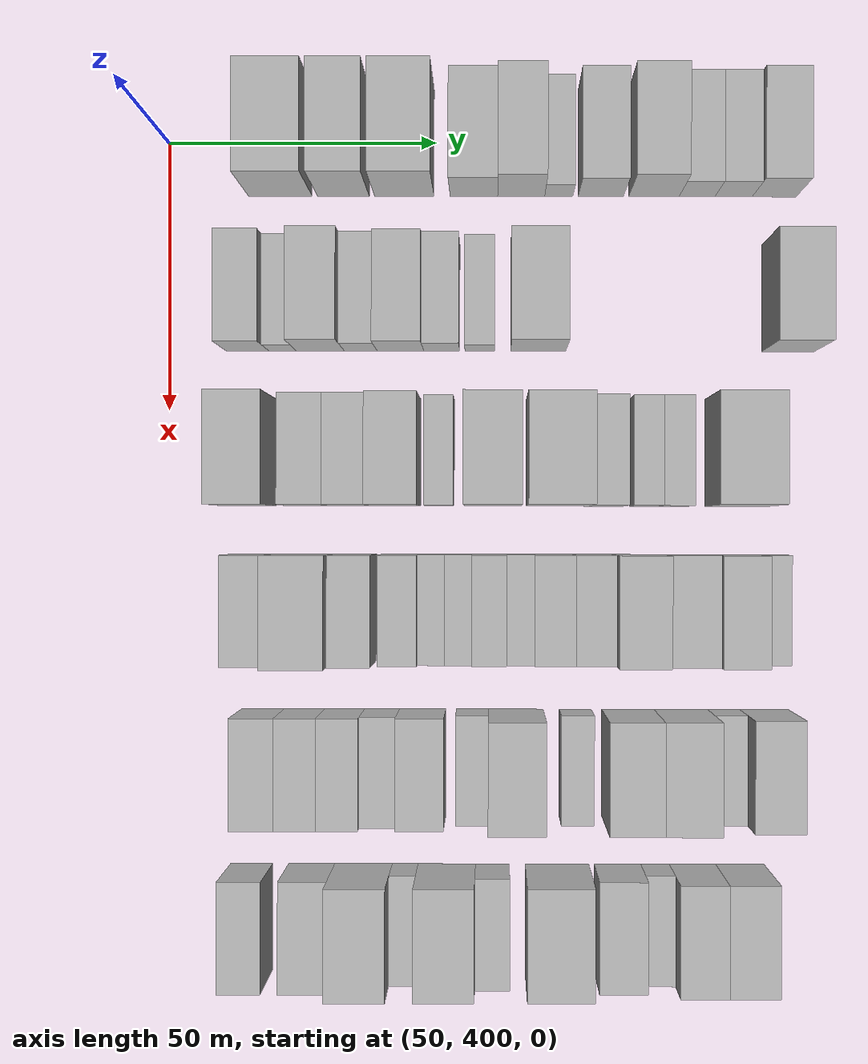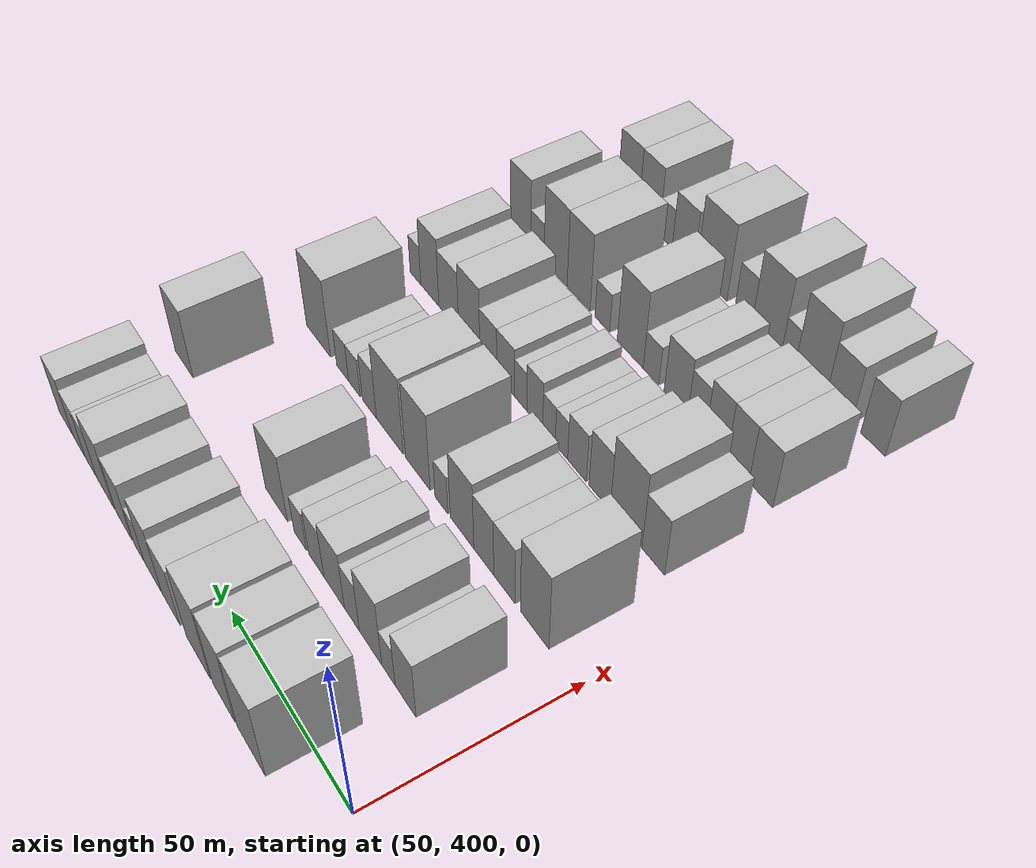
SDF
<sdf version="1.6">
 <world name="default">
  <model name="building_104">
   <static>1</static>
   <pose>50.0000 420.7180 0 0.000000 0.000000 0.000000</pose>
   <link name="link">
    <pose>0 0 12.00 0 0 0</pose>
    <collision name="collision"><geometry><box><size>20.0000 11.9246 24.0000</size></box></geometry></collision>
    <visual name="visual">
     <cast_shadows>0</cast_shadows>
     <geometry><box><size>20.0000 11.9246 24.0000</size></box></geometry>
     <material>
      <script>
       <uri>model://HANNAS_wall/materials/scripts</uri>
       <uri>model://HANNAS_wall/materials/textures</uri>
       <name>vrc/HANNAS_wall</name>
      </script>
     </material>
    </visual>
   </link>
  </model>
  <model name="building_105">
   <static>1</static>
   <pose>50.0000 432.5202 0 0.000000 0.000000 0.000000</pose>
   <link name="link">
    <pose>0 0 12.00 0 0 0</pose>
    <collision name="collision"><geometry><box><size>20.0000 9.6797 24.0000</size></box></geometry></collision>
    <visual name="visual">
     <cast_shadows>0</cast_shadows>
     <geometry><box><size>20.0000 9.6797 24.0000</size></box></geometry>
     <material>
      <script>
       <uri>model://HANNAS_wall/materials/scripts</uri>
       <uri>model://HANNAS_wall/materials/textures</uri>
       <name>vrc/HANNAS_wall</name>
      </script>
     </material>
    </visual>
   </link>
  </model>
  <model name="building_106">
   <static>1</static>
   <pose>50.0000 443.9248 0 0.000000 0.000000 0.000000</pose>
   <link name="link">
    <pose>0 0 12.00 0 0 0</pose>
    <collision name="collision"><geometry><box><size>20.0000 11.1296 24.0000</size></box></geometry></collision>
    <visual name="visual">
     <cast_shadows>0</cast_shadows>
     <geometry><box><size>20.0000 11.1296 24.0000</size></box></geometry>
     <material>
      <script>
       <uri>model://HANNAS_wall/materials/scripts</uri>
       <uri>model://HANNAS_wall/materials/textures</uri>
       <name>vrc/HANNAS_wall</name>
      </script>
     </material>
    </visual>
   </link>
  </model>
  <model name="building_107">
   <static>1</static>
   <pose>50.0000 456.9297 0 0.000000 0.000000 0.000000</pose>
   <link name="link">
    <pose>0 0 9.00 0 0 0</pose>
    <collision name="collision"><geometry><box><size>20.0000 8.8801 18.0000</size></box></geometry></collision>
    <visual name="visual">
     <cast_shadows>0</cast_shadows>
     <geometry><box><size>20.0000 8.8801 18.0000</size></box></geometry>
     <material>
      <script>
       <uri>model://HANNAS_wall/materials/scripts</uri>
       <uri>model://HANNAS_wall/materials/textures</uri>
       <name>vrc/HANNAS_wall</name>
      </script>
     </material>
    </visual>
   </link>
  </model>
  <model name="building_108">
   <static>1</static>
   <pose>50.0000 465.7700 0 0.000000 0.000000 0.000000</pose>
   <link name="link">
    <pose>0 0 10.50 0 0 0</pose>
    <collision name="collision"><geometry><box><size>20.0000 8.8006 21.0000</size></box></geometry></collision>
    <visual name="visual">
     <cast_shadows>0</cast_shadows>
     <geometry><box><size>20.0000 8.8006 21.0000</size></box></geometry>
     <material>
      <script>
       <uri>model://HANNAS_wall/materials/scripts</uri>
       <uri>model://HANNAS_wall/materials/textures</uri>
       <name>vrc/HANNAS_wall</name>
      </script>
     </material>
    </visual>
   </link>
  </model>
  <model name="building_109">
   <static>1</static>
   <pose>50.0000 472.8131 0 0.000000 0.000000 0.000000</pose>
   <link name="link">
    <pose>0 0 6.00 0 0 0</pose>
    <collision name="collision"><geometry><box><size>20.0000 5.2856 12.0000</size></box></geometry></collision>
    <visual name="visual">
     <cast_shadows>0</cast_shadows>
     <geometry><box><size>20.0000 5.2856 12.0000</size></box></geometry>
     <material>
      <script>
       <uri>model://HANNAS_wall/materials/scripts</uri>
       <uri>model://HANNAS_wall/materials/textures</uri>
       <name>vrc/HANNAS_wall</name>
      </script>
     </material>
    </visual>
   </link>
  </model>
  <model name="building_110">
   <static>1</static>
   <pose>50.0000 480.6800 0 0.000000 0.000000 0.000000</pose>
   <link name="link">
    <pose>0 0 9.00 0 0 0</pose>
    <collision name="collision"><geometry><box><size>20.0000 8.4480 18.0000</size></box></geometry></collision>
    <visual name="visual">
     <cast_shadows>0</cast_shadows>
     <geometry><box><size>20.0000 8.4480 18.0000</size></box></geometry>
     <material>
      <script>
       <uri>model://HANNAS_wall/materials/scripts</uri>
       <uri>model://HANNAS_wall/materials/textures</uri>
       <name>vrc/HANNAS_wall</name>
      </script>
     </material>
    </visual>
   </link>
  </model>
  <model name="building_111">
   <static>1</static>
   <pose>50.0000 490.6260 0 0.000000 0.000000 0.000000</pose>
   <link name="link">
    <pose>0 0 10.50 0 0 0</pose>
    <collision name="collision"><geometry><box><size>20.0000 9.4441 21.0000</size></box></geometry></collision>
    <visual name="visual">
     <cast_shadows>0</cast_shadows>
     <geometry><box><size>20.0000 9.4441 21.0000</size></box></geometry>
     <material>
      <script>
       <uri>model://HANNAS_wall/materials/scripts</uri>
       <uri>model://HANNAS_wall/materials/textures</uri>
       <name>vrc/HANNAS_wall</name>
      </script>
     </material>
    </visual>
   </link>
  </model>
  <model name="building_112">
   <static>1</static>
   <pose>50.0000 498.7035 0 0.000000 0.000000 0.000000</pose>
   <link name="link">
    <pose>0 0 7.50 0 0 0</pose>
    <collision name="collision"><geometry><box><size>20.0000 6.7109 15.0000</size></box></geometry></collision>
    <visual name="visual">
     <cast_shadows>0</cast_shadows>
     <geometry><box><size>20.0000 6.7109 15.0000</size></box></geometry>
     <material>
      <script>
       <uri>model://HANNAS_wall/materials/scripts</uri>
       <uri>model://HANNAS_wall/materials/textures</uri>
       <name>vrc/HANNAS_wall</name>
      </script>
     </material>
    </visual>
   </link>
  </model>
  <model name="building_113">
   <static>1</static>
   <pose>50.0000 505.5446 0 0.000000 0.000000 0.000000</pose>
   <link name="link">
    <pose>0 0 7.50 0 0 0</pose>
    <collision name="collision"><geometry><box><size>20.0000 6.9713 15.0000</size></box></geometry></collision>
    <visual name="visual">
     <cast_shadows>0</cast_shadows>
     <geometry><box><size>20.0000 6.9713 15.0000</size></box></geometry>
     <material>
      <script>
       <uri>model://HANNAS_wall/materials/scripts</uri>
       <uri>model://HANNAS_wall/materials/textures</uri>
       <name>vrc/HANNAS_wall</name>
      </script>
     </material>
    </visual>
   </link>
  </model>
  <model name="building_114">
   <static>1</static>
   <pose>50.0000 513.1639 0 0.000000 0.000000 0.000000</pose>
   <link name="link">
    <pose>0 0 9.00 0 0 0</pose>
    <collision name="collision"><geometry><box><size>20.0000 8.2673 18.0000</size></box></geometry></collision>
    <visual name="visual">
     <cast_shadows>0</cast_shadows>
     <geometry><box><size>20.0000 8.2673 18.0000</size></box></geometry>
     <material>
      <script>
       <uri>model://HANNAS_wall/materials/scripts</uri>
       <uri>model://HANNAS_wall/materials/textures</uri>
       <name>vrc/HANNAS_wall</name>
      </script>
     </material>
    </visual>
   </link>
  </model>
  <model name="building_220">
   <static>1</static>
   <pose>79.0000 414.6293 0 0.000000 0.000000 0.000000</pose>
   <link name="link">
    <pose>0 0 9.00 0 0 0</pose>
    <collision name="collision"><geometry><box><size>20.0000 7.9719 18.0000</size></box></geometry></collision>
    <visual name="visual">
     <cast_shadows>0</cast_shadows>
     <geometry><box><size>20.0000 7.9719 18.0000</size></box></geometry>
     <material>
      <script>
       <uri>model://HANNAS_wall/materials/scripts</uri>
       <uri>model://HANNAS_wall/materials/textures</uri>
       <name>vrc/HANNAS_wall</name>
      </script>
     </material>
    </visual>
   </link>
  </model>
  <model name="building_221">
   <static>1</static>
   <pose>79.0000 421.1998 0 0.000000 0.000000 0.000000</pose>
   <link name="link">
    <pose>0 0 6.00 0 0 0</pose>
    <collision name="collision"><geometry><box><size>20.0000 5.1690 12.0000</size></box></geometry></collision>
    <visual name="visual">
     <cast_shadows>0</cast_shadows>
     <geometry><box><size>20.0000 5.1690 12.0000</size></box></geometry>
     <material>
      <script>
       <uri>model://HANNAS_wall/materials/scripts</uri>
       <uri>model://HANNAS_wall/materials/textures</uri>
       <name>vrc/HANNAS_wall</name>
      </script>
     </material>
    </visual>
   </link>
  </model>
  <model name="building_222">
   <static>1</static>
   <pose>79.0000 428.2709 0 0.000000 0.000000 0.000000</pose>
   <link name="link">
    <pose>0 0 10.50 0 0 0</pose>
    <collision name="collision"><geometry><box><size>20.0000 8.9733 21.0000</size></box></geometry></collision>
    <visual name="visual">
     <cast_shadows>0</cast_shadows>
     <geometry><box><size>20.0000 8.9733 21.0000</size></box></geometry>
     <material>
      <script>
       <uri>model://HANNAS_wall/materials/scripts</uri>
       <uri>model://HANNAS_wall/materials/textures</uri>
       <name>vrc/HANNAS_wall</name>
      </script>
     </material>
    </visual>
   </link>
  </model>
  <model name="building_223">
   <static>1</static>
   <pose>79.0000 435.8269 0 0.000000 0.000000 0.000000</pose>
   <link name="link">
    <pose>0 0 7.50 0 0 0</pose>
    <collision name="collision"><geometry><box><size>20.0000 6.1386 15.0000</size></box></geometry></collision>
    <visual name="visual">
     <cast_shadows>0</cast_shadows>
     <geometry><box><size>20.0000 6.1386 15.0000</size></box></geometry>
     <material>
      <script>
       <uri>model://HANNAS_wall/materials/scripts</uri>
       <uri>model://HANNAS_wall/materials/textures</uri>
       <name>vrc/HANNAS_wall</name>
      </script>
     </material>
    </visual>
   </link>
  </model>
  <model name="building_224">
   <static>1</static>
   <pose>79.0000 443.2588 0 0.000000 0.000000 0.000000</pose>
   <link name="link">
    <pose>0 0 9.00 0 0 0</pose>
    <collision name="collision"><geometry><box><size>20.0000 8.7252 18.0000</size></box></geometry></collision>
    <visual name="visual">
     <cast_shadows>0</cast_shadows>
     <geometry><box><size>20.0000 8.7252 18.0000</size></box></geometry>
     <material>
      <script>
       <uri>model://HANNAS_wall/materials/scripts</uri>
       <uri>model://HANNAS_wall/materials/textures</uri>
       <name>vrc/HANNAS_wall</name>
      </script>
     </material>
    </visual>
   </link>
  </model>
  <model name="building_225">
   <static>1</static>
   <pose>79.0000 450.9756 0 0.000000 0.000000 0.000000</pose>
   <link name="link">
    <pose>0 0 7.50 0 0 0</pose>
    <collision name="collision"><geometry><box><size>20.0000 6.7085 15.0000</size></box></geometry></collision>
    <visual name="visual">
     <cast_shadows>0</cast_shadows>
     <geometry><box><size>20.0000 6.7085 15.0000</size></box></geometry>
     <material>
      <script>
       <uri>model://HANNAS_wall/materials/scripts</uri>
       <uri>model://HANNAS_wall/materials/textures</uri>
       <name>vrc/HANNAS_wall</name>
      </script>
     </material>
    </visual>
   </link>
  </model>
  <model name="building_226">
   <static>1</static>
   <pose>79.0000 458.0869 0 0.000000 0.000000 0.000000</pose>
   <link name="link">
    <pose>0 0 6.00 0 0 0</pose>
    <collision name="collision"><geometry><box><size>20.0000 5.5140 12.0000</size></box></geometry></collision>
    <visual name="visual">
     <cast_shadows>0</cast_shadows>
     <geometry><box><size>20.0000 5.5140 12.0000</size></box></geometry>
     <material>
      <script>
       <uri>model://HANNAS_wall/materials/scripts</uri>
       <uri>model://HANNAS_wall/materials/textures</uri>
       <name>vrc/HANNAS_wall</name>
      </script>
     </material>
    </visual>
   </link>
  </model>
  <model name="building_227">
   <static>1</static>
   <pose>79.0000 468.9820 0 0.000000 0.000000 0.000000</pose>
   <link name="link">
    <pose>0 0 10.50 0 0 0</pose>
    <collision name="collision"><geometry><box><size>20.0000 10.2763 21.0000</size></box></geometry></collision>
    <visual name="visual">
     <cast_shadows>0</cast_shadows>
     <geometry><box><size>20.0000 10.2763 21.0000</size></box></geometry>
     <material>
      <script>
       <uri>model://HANNAS_wall/materials/scripts</uri>
       <uri>model://HANNAS_wall/materials/textures</uri>
       <name>vrc/HANNAS_wall</name>
      </script>
     </material>
    </visual>
   </link>
  </model>
  <model name="building_228">
   <static>1</static>
   <pose>79.0000 515.8223 0 0.000000 0.000000 0.000000</pose>
   <link name="link">
    <pose>0 0 10.50 0 0 0</pose>
    <collision name="collision"><geometry><box><size>20.0000 9.8014 21.0000</size></box></geometry></collision>
    <visual name="visual">
     <cast_shadows>0</cast_shadows>
     <geometry><box><size>20.0000 9.8014 21.0000</size></box></geometry>
     <material>
      <script>
       <uri>model://HANNAS_wall/materials/scripts</uri>
       <uri>model://HANNAS_wall/materials/textures</uri>
       <name>vrc/HANNAS_wall</name>
      </script>
     </material>
    </visual>
   </link>
  </model>
  <model name="building_328">
   <static>1</static>
   <pose>108.0000 414.9157 0 0.000000 0.000000 0.000000</pose>
   <link name="link">
    <pose>0 0 12.00 0 0 0</pose>
    <collision name="collision"><geometry><box><size>20.0000 10.2205 24.0000</size></box></geometry></collision>
    <visual name="visual">
     <cast_shadows>0</cast_shadows>
     <geometry><box><size>20.0000 10.2205 24.0000</size></box></geometry>
     <material>
      <script>
       <uri>model://HANNAS_wall/materials/scripts</uri>
       <uri>model://HANNAS_wall/materials/textures</uri>
       <name>vrc/HANNAS_wall</name>
      </script>
     </material>
    </visual>
   </link>
  </model>
  <model name="building_329">
   <static>1</static>
   <pose>108.0000 426.0328 0 0.000000 0.000000 0.000000</pose>
   <link name="link">
    <pose>0 0 9.00 0 0 0</pose>
    <collision name="collision"><geometry><box><size>20.0000 8.0138 18.0000</size></box></geometry></collision>
    <visual name="visual">
     <cast_shadows>0</cast_shadows>
     <geometry><box><size>20.0000 8.0138 18.0000</size></box></geometry>
     <material>
      <script>
       <uri>model://HANNAS_wall/materials/scripts</uri>
       <uri>model://HANNAS_wall/materials/textures</uri>
       <name>vrc/HANNAS_wall</name>
      </script>
     </material>
    </visual>
   </link>
  </model>
  <model name="building_330">
   <static>1</static>
   <pose>108.0000 433.8759 0 0.000000 0.000000 0.000000</pose>
   <link name="link">
    <pose>0 0 9.00 0 0 0</pose>
    <collision name="collision"><geometry><box><size>20.0000 7.6724 18.0000</size></box></geometry></collision>
    <visual name="visual">
     <cast_shadows>0</cast_shadows>
     <geometry><box><size>20.0000 7.6724 18.0000</size></box></geometry>
     <material>
      <script>
       <uri>model://HANNAS_wall/materials/scripts</uri>
       <uri>model://HANNAS_wall/materials/textures</uri>
       <name>vrc/HANNAS_wall</name>
      </script>
     </material>
    </visual>
   </link>
  </model>
  <model name="building_331">
   <static>1</static>
   <pose>108.0000 442.3809 0 0.000000 0.000000 0.000000</pose>
   <link name="link">
    <pose>0 0 10.50 0 0 0</pose>
    <collision name="collision"><geometry><box><size>20.0000 9.3376 21.0000</size></box></geometry></collision>
    <visual name="visual">
     <cast_shadows>0</cast_shadows>
     <geometry><box><size>20.0000 9.3376 21.0000</size></box></geometry>
     <material>
      <script>
       <uri>model://HANNAS_wall/materials/scripts</uri>
       <uri>model://HANNAS_wall/materials/textures</uri>
       <name>vrc/HANNAS_wall</name>
      </script>
     </material>
    </visual>
   </link>
  </model>
  <model name="building_332">
   <static>1</static>
   <pose>108.0000 450.6848 0 0.000000 0.000000 0.000000</pose>
   <link name="link">
    <pose>0 0 6.00 0 0 0</pose>
    <collision name="collision"><geometry><box><size>20.0000 5.2702 12.0000</size></box></geometry></collision>
    <visual name="visual">
     <cast_shadows>0</cast_shadows>
     <geometry><box><size>20.0000 5.2702 12.0000</size></box></geometry>
     <material>
      <script>
       <uri>model://HANNAS_wall/materials/scripts</uri>
       <uri>model://HANNAS_wall/materials/textures</uri>
       <name>vrc/HANNAS_wall</name>
      </script>
     </material>
    </visual>
   </link>
  </model>
  <model name="building_333">
   <static>1</static>
   <pose>108.0000 460.5573 0 0.000000 0.000000 0.000000</pose>
   <link name="link">
    <pose>0 0 12.00 0 0 0</pose>
    <collision name="collision"><geometry><box><size>20.0000 10.4749 24.0000</size></box></geometry></collision>
    <visual name="visual">
     <cast_shadows>0</cast_shadows>
     <geometry><box><size>20.0000 10.4749 24.0000</size></box></geometry>
     <material>
      <script>
       <uri>model://HANNAS_wall/materials/scripts</uri>
       <uri>model://HANNAS_wall/materials/textures</uri>
       <name>vrc/HANNAS_wall</name>
      </script>
     </material>
    </visual>
   </link>
  </model>
  <model name="building_334">
   <static>1</static>
   <pose>108.0000 472.7241 0 0.000000 0.000000 0.000000</pose>
   <link name="link">
    <pose>0 0 12.00 0 0 0</pose>
    <collision name="collision"><geometry><box><size>20.0000 11.8587 24.0000</size></box></geometry></collision>
    <visual name="visual">
     <cast_shadows>0</cast_shadows>
     <geometry><box><size>20.0000 11.8587 24.0000</size></box></geometry>
     <material>
      <script>
       <uri>model://HANNAS_wall/materials/scripts</uri>
       <uri>model://HANNAS_wall/materials/textures</uri>
       <name>vrc/HANNAS_wall</name>
      </script>
     </material>
    </visual>
   </link>
  </model>
  <model name="building_335">
   <static>1</static>
   <pose>108.0000 481.8641 0 0.000000 0.000000 0.000000</pose>
   <link name="link">
    <pose>0 0 7.50 0 0 0</pose>
    <collision name="collision"><geometry><box><size>20.0000 6.4214 15.0000</size></box></geometry></collision>
    <visual name="visual">
     <cast_shadows>0</cast_shadows>
     <geometry><box><size>20.0000 6.4214 15.0000</size></box></geometry>
     <material>
      <script>
       <uri>model://HANNAS_wall/materials/scripts</uri>
       <uri>model://HANNAS_wall/materials/textures</uri>
       <name>vrc/HANNAS_wall</name>
      </script>
     </material>
    </visual>
   </link>
  </model>
  <model name="building_336">
   <static>1</static>
   <pose>108.0000 488.7938 0 0.000000 0.000000 0.000000</pose>
   <link name="link">
    <pose>0 0 6.00 0 0 0</pose>
    <collision name="collision"><geometry><box><size>20.0000 5.4379 12.0000</size></box></geometry></collision>
    <visual name="visual">
     <cast_shadows>0</cast_shadows>
     <geometry><box><size>20.0000 5.4379 12.0000</size></box></geometry>
     <material>
      <script>
       <uri>model://HANNAS_wall/materials/scripts</uri>
       <uri>model://HANNAS_wall/materials/textures</uri>
       <name>vrc/HANNAS_wall</name>
      </script>
     </material>
    </visual>
   </link>
  </model>
  <model name="building_337">
   <static>1</static>
   <pose>108.0000 494.3526 0 0.000000 0.000000 0.000000</pose>
   <link name="link">
    <pose>0 0 6.00 0 0 0</pose>
    <collision name="collision"><geometry><box><size>20.0000 5.6798 12.0000</size></box></geometry></collision>
    <visual name="visual">
     <cast_shadows>0</cast_shadows>
     <geometry><box><size>20.0000 5.6798 12.0000</size></box></geometry>
     <material>
      <script>
       <uri>model://HANNAS_wall/materials/scripts</uri>
       <uri>model://HANNAS_wall/materials/textures</uri>
       <name>vrc/HANNAS_wall</name>
      </script>
     </material>
    </visual>
   </link>
  </model>
  <model name="building_338">
   <static>1</static>
   <pose>108.0000 506.1462 0 0.000000 0.000000 0.000000</pose>
   <link name="link">
    <pose>0 0 12.00 0 0 0</pose>
    <collision name="collision"><geometry><box><size>20.0000 11.9074 24.0000</size></box></geometry></collision>
    <visual name="visual">
     <cast_shadows>0</cast_shadows>
     <geometry><box><size>20.0000 11.9074 24.0000</size></box></geometry>
     <material>
      <script>
       <uri>model://HANNAS_wall/materials/scripts</uri>
       <uri>model://HANNAS_wall/materials/textures</uri>
       <name>vrc/HANNAS_wall</name>
      </script>
     </material>
    </visual>
   </link>
  </model>
  <model name="building_439">
   <static>1</static>
   <pose>137.0000 415.7518 0 0.000000 0.000000 0.000000</pose>
   <link name="link">
    <pose>0 0 9.00 0 0 0</pose>
    <collision name="collision"><geometry><box><size>20.0000 7.8046 18.0000</size></box></geometry></collision>
    <visual name="visual">
     <cast_shadows>0</cast_shadows>
     <geometry><box><size>20.0000 7.8046 18.0000</size></box></geometry>
     <material>
      <script>
       <uri>model://HANNAS_wall/materials/scripts</uri>
       <uri>model://HANNAS_wall/materials/textures</uri>
       <name>vrc/HANNAS_wall</name>
      </script>
     </material>
    </visual>
   </link>
  </model>
  <model name="building_440">
   <static>1</static>
   <pose>137.0000 425.3237 0 0.000000 0.000000 0.000000</pose>
   <link name="link">
    <pose>0 0 12.00 0 0 0</pose>
    <collision name="collision"><geometry><box><size>20.0000 11.3392 24.0000</size></box></geometry></collision>
    <visual name="visual">
     <cast_shadows>0</cast_shadows>
     <geometry><box><size>20.0000 11.3392 24.0000</size></box></geometry>
     <material>
      <script>
       <uri>model://HANNAS_wall/materials/scripts</uri>
       <uri>model://HANNAS_wall/materials/textures</uri>
       <name>vrc/HANNAS_wall</name>
      </script>
     </material>
    </visual>
   </link>
  </model>
  <model name="building_441">
   <static>1</static>
   <pose>137.0000 434.8929 0 0.000000 0.000000 0.000000</pose>
   <link name="link">
    <pose>0 0 9.00 0 0 0</pose>
    <collision name="collision"><geometry><box><size>20.0000 7.7992 18.0000</size></box></geometry></collision>
    <visual name="visual">
     <cast_shadows>0</cast_shadows>
     <geometry><box><size>20.0000 7.7992 18.0000</size></box></geometry>
     <material>
      <script>
       <uri>model://HANNAS_wall/materials/scripts</uri>
       <uri>model://HANNAS_wall/materials/textures</uri>
       <name>vrc/HANNAS_wall</name>
      </script>
     </material>
    </visual>
   </link>
  </model>
  <model name="building_442">
   <static>1</static>
   <pose>137.0000 443.3473 0 0.000000 0.000000 0.000000</pose>
   <link name="link">
    <pose>0 0 7.50 0 0 0</pose>
    <collision name="collision"><geometry><box><size>20.0000 7.1096 15.0000</size></box></geometry></collision>
    <visual name="visual">
     <cast_shadows>0</cast_shadows>
     <geometry><box><size>20.0000 7.1096 15.0000</size></box></geometry>
     <material>
      <script>
       <uri>model://HANNAS_wall/materials/scripts</uri>
       <uri>model://HANNAS_wall/materials/textures</uri>
       <name>vrc/HANNAS_wall</name>
      </script>
     </material>
    </visual>
   </link>
  </model>
  <model name="building_443">
   <static>1</static>
   <pose>137.0000 449.3199 0 0.000000 0.000000 0.000000</pose>
   <link name="link">
    <pose>0 0 6.00 0 0 0</pose>
    <collision name="collision"><geometry><box><size>20.0000 4.8356 12.0000</size></box></geometry></collision>
    <visual name="visual">
     <cast_shadows>0</cast_shadows>
     <geometry><box><size>20.0000 4.8356 12.0000</size></box></geometry>
     <material>
      <script>
       <uri>model://HANNAS_wall/materials/scripts</uri>
       <uri>model://HANNAS_wall/materials/textures</uri>
       <name>vrc/HANNAS_wall</name>
      </script>
     </material>
    </visual>
   </link>
  </model>
  <model name="building_444">
   <static>1</static>
   <pose>137.0000 454.2208 0 0.000000 0.000000 0.000000</pose>
   <link name="link">
    <pose>0 0 6.00 0 0 0</pose>
    <collision name="collision"><geometry><box><size>20.0000 4.9662 12.0000</size></box></geometry></collision>
    <visual name="visual">
     <cast_shadows>0</cast_shadows>
     <geometry><box><size>20.0000 4.9662 12.0000</size></box></geometry>
     <material>
      <script>
       <uri>model://HANNAS_wall/materials/scripts</uri>
       <uri>model://HANNAS_wall/materials/textures</uri>
       <name>vrc/HANNAS_wall</name>
      </script>
     </material>
    </visual>
   </link>
  </model>
  <model name="building_445">
   <static>1</static>
   <pose>137.0000 459.8963 0 0.000000 0.000000 0.000000</pose>
   <link name="link">
    <pose>0 0 7.50 0 0 0</pose>
    <collision name="collision"><geometry><box><size>20.0000 6.3846 15.0000</size></box></geometry></collision>
    <visual name="visual">
     <cast_shadows>0</cast_shadows>
     <geometry><box><size>20.0000 6.3846 15.0000</size></box></geometry>
     <material>
      <script>
       <uri>model://HANNAS_wall/materials/scripts</uri>
       <uri>model://HANNAS_wall/materials/textures</uri>
       <name>vrc/HANNAS_wall</name>
      </script>
     </material>
    </visual>
   </link>
  </model>
  <model name="building_446">
   <static>1</static>
   <pose>137.0000 465.5894 0 0.000000 0.000000 0.000000</pose>
   <link name="link">
    <pose>0 0 6.00 0 0 0</pose>
    <collision name="collision"><geometry><box><size>20.0000 5.0016 12.0000</size></box></geometry></collision>
    <visual name="visual">
     <cast_shadows>0</cast_shadows>
     <geometry><box><size>20.0000 5.0016 12.0000</size></box></geometry>
     <material>
      <script>
       <uri>model://HANNAS_wall/materials/scripts</uri>
       <uri>model://HANNAS_wall/materials/textures</uri>
       <name>vrc/HANNAS_wall</name>
      </script>
     </material>
    </visual>
   </link>
  </model>
  <model name="building_447">
   <static>1</static>
   <pose>137.0000 471.7929 0 0.000000 0.000000 0.000000</pose>
   <link name="link">
    <pose>0 0 7.50 0 0 0</pose>
    <collision name="collision"><geometry><box><size>20.0000 7.4055 15.0000</size></box></geometry></collision>
    <visual name="visual">
     <cast_shadows>0</cast_shadows>
     <geometry><box><size>20.0000 7.4055 15.0000</size></box></geometry>
     <material>
      <script>
       <uri>model://HANNAS_wall/materials/scripts</uri>
       <uri>model://HANNAS_wall/materials/textures</uri>
       <name>vrc/HANNAS_wall</name>
      </script>
     </material>
    </visual>
   </link>
  </model>
  <model name="building_448">
   <static>1</static>
   <pose>137.0000 479.1631 0 0.000000 0.000000 0.000000</pose>
   <link name="link">
    <pose>0 0 7.50 0 0 0</pose>
    <collision name="collision"><geometry><box><size>20.0000 7.3348 15.0000</size></box></geometry></collision>
    <visual name="visual">
     <cast_shadows>0</cast_shadows>
     <geometry><box><size>20.0000 7.3348 15.0000</size></box></geometry>
     <material>
      <script>
       <uri>model://HANNAS_wall/materials/scripts</uri>
       <uri>model://HANNAS_wall/materials/textures</uri>
       <name>vrc/HANNAS_wall</name>
      </script>
     </material>
    </visual>
   </link>
  </model>
  <model name="building_449">
   <static>1</static>
   <pose>137.0000 487.5178 0 0.000000 0.000000 0.000000</pose>
   <link name="link">
    <pose>0 0 10.50 0 0 0</pose>
    <collision name="collision"><geometry><box><size>20.0000 9.3746 21.0000</size></box></geometry></collision>
    <visual name="visual">
     <cast_shadows>0</cast_shadows>
     <geometry><box><size>20.0000 9.3746 21.0000</size></box></geometry>
     <material>
      <script>
       <uri>model://HANNAS_wall/materials/scripts</uri>
       <uri>model://HANNAS_wall/materials/textures</uri>
       <name>vrc/HANNAS_wall</name>
      </script>
     </material>
    </visual>
   </link>
  </model>
  <model name="building_450">
   <static>1</static>
   <pose>137.0000 496.6978 0 0.000000 0.000000 0.000000</pose>
   <link name="link">
    <pose>0 0 9.00 0 0 0</pose>
    <collision name="collision"><geometry><box><size>20.0000 8.9854 18.0000</size></box></geometry></collision>
    <visual name="visual">
     <cast_shadows>0</cast_shadows>
     <geometry><box><size>20.0000 8.9854 18.0000</size></box></geometry>
     <material>
      <script>
       <uri>model://HANNAS_wall/materials/scripts</uri>
       <uri>model://HANNAS_wall/materials/textures</uri>
       <name>vrc/HANNAS_wall</name>
      </script>
     </material>
    </visual>
   </link>
  </model>
  <model name="building_451">
   <static>1</static>
   <pose>137.0000 505.4079 0 0.000000 0.000000 0.000000</pose>
   <link name="link">
    <pose>0 0 10.50 0 0 0</pose>
    <collision name="collision"><geometry><box><size>20.0000 8.4348 21.0000</size></box></geometry></collision>
    <visual name="visual">
     <cast_shadows>0</cast_shadows>
     <geometry><box><size>20.0000 8.4348 21.0000</size></box></geometry>
     <material>
      <script>
       <uri>model://HANNAS_wall/materials/scripts</uri>
       <uri>model://HANNAS_wall/materials/textures</uri>
       <name>vrc/HANNAS_wall</name>
      </script>
     </material>
    </visual>
   </link>
  </model>
  <model name="building_452">
   <static>1</static>
   <pose>137.0000 512.1535 0 0.000000 0.000000 0.000000</pose>
   <link name="link">
    <pose>0 0 6.00 0 0 0</pose>
    <collision name="collision"><geometry><box><size>20.0000 5.0563 12.0000</size></box></geometry></collision>
    <visual name="visual">
     <cast_shadows>0</cast_shadows>
     <geometry><box><size>20.0000 5.0563 12.0000</size></box></geometry>
     <material>
      <script>
       <uri>model://HANNAS_wall/materials/scripts</uri>
       <uri>model://HANNAS_wall/materials/textures</uri>
       <name>vrc/HANNAS_wall</name>
      </script>
     </material>
    </visual>
   </link>
  </model>
  <model name="building_554">
   <static>1</static>
   <pose>166.0000 417.5611 0 0.000000 0.000000 0.000000</pose>
   <link name="link">
    <pose>0 0 9.00 0 0 0</pose>
    <collision name="collision"><geometry><box><size>20.0000 7.9749 18.0000</size></box></geometry></collision>
    <visual name="visual">
     <cast_shadows>0</cast_shadows>
     <geometry><box><size>20.0000 7.9749 18.0000</size></box></geometry>
     <material>
      <script>
       <uri>model://HANNAS_wall/materials/scripts</uri>
       <uri>model://HANNAS_wall/materials/textures</uri>
       <name>vrc/HANNAS_wall</name>
      </script>
     </material>
    </visual>
   </link>
  </model>
  <model name="building_555">
   <static>1</static>
   <pose>166.0000 425.3174 0 0.000000 0.000000 0.000000</pose>
   <link name="link">
    <pose>0 0 9.00 0 0 0</pose>
    <collision name="collision"><geometry><box><size>20.0000 7.5377 18.0000</size></box></geometry></collision>
    <visual name="visual">
     <cast_shadows>0</cast_shadows>
     <geometry><box><size>20.0000 7.5377 18.0000</size></box></geometry>
     <material>
      <script>
       <uri>model://HANNAS_wall/materials/scripts</uri>
       <uri>model://HANNAS_wall/materials/textures</uri>
       <name>vrc/HANNAS_wall</name>
      </script>
     </material>
    </visual>
   </link>
  </model>
  <model name="building_556">
   <static>1</static>
   <pose>166.0000 432.8480 0 0.000000 0.000000 0.000000</pose>
   <link name="link">
    <pose>0 0 9.00 0 0 0</pose>
    <collision name="collision"><geometry><box><size>20.0000 7.5236 18.0000</size></box></geometry></collision>
    <visual name="visual">
     <cast_shadows>0</cast_shadows>
     <geometry><box><size>20.0000 7.5236 18.0000</size></box></geometry>
     <material>
      <script>
       <uri>model://HANNAS_wall/materials/scripts</uri>
       <uri>model://HANNAS_wall/materials/textures</uri>
       <name>vrc/HANNAS_wall</name>
      </script>
     </material>
    </visual>
   </link>
  </model>
  <model name="building_557">
   <static>1</static>
   <pose>166.0000 439.8673 0 0.000000 0.000000 0.000000</pose>
   <link name="link">
    <pose>0 0 7.50 0 0 0</pose>
    <collision name="collision"><geometry><box><size>20.0000 6.5151 15.0000</size></box></geometry></collision>
    <visual name="visual">
     <cast_shadows>0</cast_shadows>
     <geometry><box><size>20.0000 6.5151 15.0000</size></box></geometry>
     <material>
      <script>
       <uri>model://HANNAS_wall/materials/scripts</uri>
       <uri>model://HANNAS_wall/materials/textures</uri>
       <name>vrc/HANNAS_wall</name>
      </script>
     </material>
    </visual>
   </link>
  </model>
  <model name="building_558">
   <static>1</static>
   <pose>166.0000 447.4695 0 0.000000 0.000000 0.000000</pose>
   <link name="link">
    <pose>0 0 9.00 0 0 0</pose>
    <collision name="collision"><geometry><box><size>20.0000 8.6892 18.0000</size></box></geometry></collision>
    <visual name="visual">
     <cast_shadows>0</cast_shadows>
     <geometry><box><size>20.0000 8.6892 18.0000</size></box></geometry>
     <material>
      <script>
       <uri>model://HANNAS_wall/materials/scripts</uri>
       <uri>model://HANNAS_wall/materials/textures</uri>
       <name>vrc/HANNAS_wall</name>
      </script>
     </material>
    </visual>
   </link>
  </model>
  <model name="building_559">
   <static>1</static>
   <pose>166.0000 456.7804 0 0.000000 0.000000 0.000000</pose>
   <link name="link">
    <pose>0 0 6.00 0 0 0</pose>
    <collision name="collision"><geometry><box><size>20.0000 5.9326 12.0000</size></box></geometry></collision>
    <visual name="visual">
     <cast_shadows>0</cast_shadows>
     <geometry><box><size>20.0000 5.9326 12.0000</size></box></geometry>
     <material>
      <script>
       <uri>model://HANNAS_wall/materials/scripts</uri>
       <uri>model://HANNAS_wall/materials/textures</uri>
       <name>vrc/HANNAS_wall</name>
      </script>
     </material>
    </visual>
   </link>
  </model>
  <model name="building_560">
   <static>1</static>
   <pose>166.0000 464.8620 0 0.000000 0.000000 0.000000</pose>
   <link name="link">
    <pose>0 0 12.00 0 0 0</pose>
    <collision name="collision"><geometry><box><size>20.0000 10.2304 24.0000</size></box></geometry></collision>
    <visual name="visual">
     <cast_shadows>0</cast_shadows>
     <geometry><box><size>20.0000 10.2304 24.0000</size></box></geometry>
     <material>
      <script>
       <uri>model://HANNAS_wall/materials/scripts</uri>
       <uri>model://HANNAS_wall/materials/textures</uri>
       <name>vrc/HANNAS_wall</name>
      </script>
     </material>
    </visual>
   </link>
  </model>
  <model name="building_561">
   <static>1</static>
   <pose>166.0000 475.9691 0 0.000000 0.000000 0.000000</pose>
   <link name="link">
    <pose>0 0 6.00 0 0 0</pose>
    <collision name="collision"><geometry><box><size>20.0000 5.9839 12.0000</size></box></geometry></collision>
    <visual name="visual">
     <cast_shadows>0</cast_shadows>
     <geometry><box><size>20.0000 5.9839 12.0000</size></box></geometry>
     <material>
      <script>
       <uri>model://HANNAS_wall/materials/scripts</uri>
       <uri>model://HANNAS_wall/materials/textures</uri>
       <name>vrc/HANNAS_wall</name>
      </script>
     </material>
    </visual>
   </link>
  </model>
  <model name="building_562">
   <static>1</static>
   <pose>166.0000 485.8294 0 0.000000 0.000000 0.000000</pose>
   <link name="link">
    <pose>0 0 12.00 0 0 0</pose>
    <collision name="collision"><geometry><box><size>20.0000 9.7367 24.0000</size></box></geometry></collision>
    <visual name="visual">
     <cast_shadows>0</cast_shadows>
     <geometry><box><size>20.0000 9.7367 24.0000</size></box></geometry>
     <material>
      <script>
       <uri>model://HANNAS_wall/materials/scripts</uri>
       <uri>model://HANNAS_wall/materials/textures</uri>
       <name>vrc/HANNAS_wall</name>
      </script>
     </material>
    </visual>
   </link>
  </model>
  <model name="building_563">
   <static>1</static>
   <pose>166.0000 495.7229 0 0.000000 0.000000 0.000000</pose>
   <link name="link">
    <pose>0 0 12.00 0 0 0</pose>
    <collision name="collision"><geometry><box><size>20.0000 10.0502 24.0000</size></box></geometry></collision>
    <visual name="visual">
     <cast_shadows>0</cast_shadows>
     <geometry><box><size>20.0000 10.0502 24.0000</size></box></geometry>
     <material>
      <script>
       <uri>model://HANNAS_wall/materials/scripts</uri>
       <uri>model://HANNAS_wall/materials/textures</uri>
       <name>vrc/HANNAS_wall</name>
      </script>
     </material>
    </visual>
   </link>
  </model>
  <model name="building_564">
   <static>1</static>
   <pose>166.0000 503.7398 0 0.000000 0.000000 0.000000</pose>
   <link name="link">
    <pose>0 0 6.00 0 0 0</pose>
    <collision name="collision"><geometry><box><size>20.0000 5.9837 12.0000</size></box></geometry></collision>
    <visual name="visual">
     <cast_shadows>0</cast_shadows>
     <geometry><box><size>20.0000 5.9837 12.0000</size></box></geometry>
     <material>
      <script>
       <uri>model://HANNAS_wall/materials/scripts</uri>
       <uri>model://HANNAS_wall/materials/textures</uri>
       <name>vrc/HANNAS_wall</name>
      </script>
     </material>
    </visual>
   </link>
  </model>
  <model name="building_565">
   <static>1</static>
   <pose>166.0000 511.2935 0 0.000000 0.000000 0.000000</pose>
   <link name="link">
    <pose>0 0 10.50 0 0 0</pose>
    <collision name="collision"><geometry><box><size>20.0000 9.1236 21.0000</size></box></geometry></collision>
    <visual name="visual">
     <cast_shadows>0</cast_shadows>
     <geometry><box><size>20.0000 9.1236 21.0000</size></box></geometry>
     <material>
      <script>
       <uri>model://HANNAS_wall/materials/scripts</uri>
       <uri>model://HANNAS_wall/materials/textures</uri>
       <name>vrc/HANNAS_wall</name>
      </script>
     </material>
    </visual>
   </link>
  </model>
  <model name="building_664">
   <static>1</static>
   <pose>195.0000 415.4632 0 0.000000 0.000000 0.000000</pose>
   <link name="link">
    <pose>0 0 9.00 0 0 0</pose>
    <collision name="collision"><geometry><box><size>20.0000 7.8553 18.0000</size></box></geometry></collision>
    <visual name="visual">
     <cast_shadows>0</cast_shadows>
     <geometry><box><size>20.0000 7.8553 18.0000</size></box></geometry>
     <material>
      <script>
       <uri>model://HANNAS_wall/materials/scripts</uri>
       <uri>model://HANNAS_wall/materials/textures</uri>
       <name>vrc/HANNAS_wall</name>
      </script>
     </material>
    </visual>
   </link>
  </model>
  <model name="building_665">
   <static>1</static>
   <pose>195.0000 426.7096 0 0.000000 0.000000 0.000000</pose>
   <link name="link">
    <pose>0 0 9.00 0 0 0</pose>
    <collision name="collision"><geometry><box><size>20.0000 8.6375 18.0000</size></box></geometry></collision>
    <visual name="visual">
     <cast_shadows>0</cast_shadows>
     <geometry><box><size>20.0000 8.6375 18.0000</size></box></geometry>
     <material>
      <script>
       <uri>model://HANNAS_wall/materials/scripts</uri>
       <uri>model://HANNAS_wall/materials/textures</uri>
       <name>vrc/HANNAS_wall</name>
      </script>
     </material>
    </visual>
   </link>
  </model>
  <model name="building_666">
   <static>1</static>
   <pose>195.0000 436.4068 0 0.000000 0.000000 0.000000</pose>
   <link name="link">
    <pose>0 0 12.00 0 0 0</pose>
    <collision name="collision"><geometry><box><size>20.0000 10.7568 24.0000</size></box></geometry></collision>
    <visual name="visual">
     <cast_shadows>0</cast_shadows>
     <geometry><box><size>20.0000 10.7568 24.0000</size></box></geometry>
     <material>
      <script>
       <uri>model://HANNAS_wall/materials/scripts</uri>
       <uri>model://HANNAS_wall/materials/textures</uri>
       <name>vrc/HANNAS_wall</name>
      </script>
     </material>
    </visual>
   </link>
  </model>
  <model name="building_667">
   <static>1</static>
   <pose>195.0000 444.1979 0 0.000000 0.000000 0.000000</pose>
   <link name="link">
    <pose>0 0 6.00 0 0 0</pose>
    <collision name="collision"><geometry><box><size>20.0000 4.8254 12.0000</size></box></geometry></collision>
    <visual name="visual">
     <cast_shadows>0</cast_shadows>
     <geometry><box><size>20.0000 4.8254 12.0000</size></box></geometry>
     <material>
      <script>
       <uri>model://HANNAS_wall/materials/scripts</uri>
       <uri>model://HANNAS_wall/materials/textures</uri>
       <name>vrc/HANNAS_wall</name>
      </script>
     </material>
    </visual>
   </link>
  </model>
  <model name="building_668">
   <static>1</static>
   <pose>195.0000 451.9828 0 0.000000 0.000000 0.000000</pose>
   <link name="link">
    <pose>0 0 12.00 0 0 0</pose>
    <collision name="collision"><geometry><box><size>20.0000 10.7445 24.0000</size></box></geometry></collision>
    <visual name="visual">
     <cast_shadows>0</cast_shadows>
     <geometry><box><size>20.0000 10.7445 24.0000</size></box></geometry>
     <material>
      <script>
       <uri>model://HANNAS_wall/materials/scripts</uri>
       <uri>model://HANNAS_wall/materials/textures</uri>
       <name>vrc/HANNAS_wall</name>
      </script>
     </material>
    </visual>
   </link>
  </model>
  <model name="building_669">
   <static>1</static>
   <pose>195.0000 460.5019 0 0.000000 0.000000 0.000000</pose>
   <link name="link">
    <pose>0 0 7.50 0 0 0</pose>
    <collision name="collision"><geometry><box><size>20.0000 6.2937 15.0000</size></box></geometry></collision>
    <visual name="visual">
     <cast_shadows>0</cast_shadows>
     <geometry><box><size>20.0000 6.2937 15.0000</size></box></geometry>
     <material>
      <script>
       <uri>model://HANNAS_wall/materials/scripts</uri>
       <uri>model://HANNAS_wall/materials/textures</uri>
       <name>vrc/HANNAS_wall</name>
      </script>
     </material>
    </visual>
   </link>
  </model>
  <model name="building_670">
   <static>1</static>
   <pose>195.0000 472.6082 0 0.000000 0.000000 0.000000</pose>
   <link name="link">
    <pose>0 0 12.00 0 0 0</pose>
    <collision name="collision"><geometry><box><size>20.0000 11.9189 24.0000</size></box></geometry></collision>
    <visual name="visual">
     <cast_shadows>0</cast_shadows>
     <geometry><box><size>20.0000 11.9189 24.0000</size></box></geometry>
     <material>
      <script>
       <uri>model://HANNAS_wall/materials/scripts</uri>
       <uri>model://HANNAS_wall/materials/textures</uri>
       <name>vrc/HANNAS_wall</name>
      </script>
     </material>
    </visual>
   </link>
  </model>
  <model name="building_671">
   <static>1</static>
   <pose>195.0000 483.9264 0 0.000000 0.000000 0.000000</pose>
   <link name="link">
    <pose>0 0 9.00 0 0 0</pose>
    <collision name="collision"><geometry><box><size>20.0000 8.7175 18.0000</size></box></geometry></collision>
    <visual name="visual">
     <cast_shadows>0</cast_shadows>
     <geometry><box><size>20.0000 8.7175 18.0000</size></box></geometry>
     <material>
      <script>
       <uri>model://HANNAS_wall/materials/scripts</uri>
       <uri>model://HANNAS_wall/materials/textures</uri>
       <name>vrc/HANNAS_wall</name>
      </script>
     </material>
    </visual>
   </link>
  </model>
  <model name="building_672">
   <static>1</static>
   <pose>195.0000 490.9603 0 0.000000 0.000000 0.000000</pose>
   <link name="link">
    <pose>0 0 6.00 0 0 0</pose>
    <collision name="collision"><geometry><box><size>20.0000 5.3502 12.0000</size></box></geometry></collision>
    <visual name="visual">
     <cast_shadows>0</cast_shadows>
     <geometry><box><size>20.0000 5.3502 12.0000</size></box></geometry>
     <material>
      <script>
       <uri>model://HANNAS_wall/materials/scripts</uri>
       <uri>model://HANNAS_wall/materials/textures</uri>
       <name>vrc/HANNAS_wall</name>
      </script>
     </material>
    </visual>
   </link>
  </model>
  <model name="building_673">
   <static>1</static>
   <pose>195.0000 497.9787 0 0.000000 0.000000 0.000000</pose>
   <link name="link">
    <pose>0 0 10.50 0 0 0</pose>
    <collision name="collision"><geometry><box><size>20.0000 8.6866 21.0000</size></box></geometry></collision>
    <visual name="visual">
     <cast_shadows>0</cast_shadows>
     <geometry><box><size>20.0000 8.6866 21.0000</size></box></geometry>
     <material>
      <script>
       <uri>model://HANNAS_wall/materials/scripts</uri>
       <uri>model://HANNAS_wall/materials/textures</uri>
       <name>vrc/HANNAS_wall</name>
      </script>
     </material>
    </visual>
   </link>
  </model>
  <model name="building_674">
   <static>1</static>
   <pose>195.0000 506.8436 0 0.000000 0.000000 0.000000</pose>
   <link name="link">
    <pose>0 0 10.50 0 0 0</pose>
    <collision name="collision"><geometry><box><size>20.0000 9.0432 21.0000</size></box></geometry></collision>
    <visual name="visual">
     <cast_shadows>0</cast_shadows>
     <geometry><box><size>20.0000 9.0432 21.0000</size></box></geometry>
     <material>
      <script>
       <uri>model://HANNAS_wall/materials/scripts</uri>
       <uri>model://HANNAS_wall/materials/textures</uri>
       <name>vrc/HANNAS_wall</name>
      </script>
     </material>
    </visual>
   </link>
  </model>
 </world>
</sdf>
